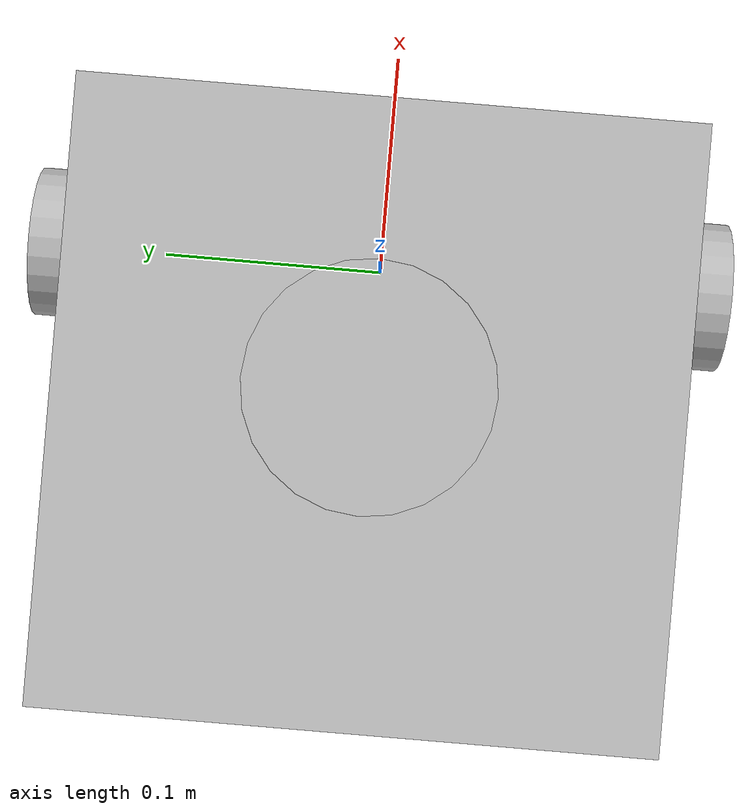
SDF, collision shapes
<?xml version='1.0'?>
<sdf version="1.6">
  <model name="turtlebot3_waffle">
    <pose>0 0 0.01 0 0 0</pose>

    <link name="base_footprint"/>

    <link name="base_link">
      <inertial>
        <pose>-0.064 0 0.048 0 0 0</pose>
        <inertia>
          <ixx>0.0315</ixx>
          <ixy>0.0</ixy>
          <ixz>0.0</ixz>
          <iyy>0.0315</iyy>
          <iyz>0.0</iyz>
          <izz>0.0315</izz>
        </inertia>
        <mass>1.3729096e+00</mass>
      </inertial>

      <collision name="base_collision">
        <pose>-0.064 0 0.048 0 0 0</pose>
        <geometry>
          <box>
            <size>0.265 0.265 0.089</size>
          </box>
        </geometry>
      </collision>

      <visual name="base_visual">
        <pose>-0.064 0 0.0 0 0 0</pose>
        <geometry>
          <mesh>
            <uri>model://turtlebot3_common/meshes/waffle_base.dae</uri>
            <scale>0.001 0.001 0.001</scale>
          </mesh>
        </geometry>
      </visual>
    </link>

    <!-- ================= LEFT WHEEL (LOW FRICTION / SLIP) ================= -->
    <link name="wheel_left_link">
      <pose>0.0 0.144 0.023 -1.57 0 0</pose>
      <inertial>
        <inertia>
          <ixx>1.1175580e-05</ixx>
          <ixy>-4.2369783e-11</ixy>
          <ixz>-5.9381719e-09</ixz>
          <iyy>1.1192413e-05</iyy>
          <iyz>-1.4400107e-11</iyz>
          <izz>2.0712558e-05</izz>
        </inertia>
        <mass>2.8498940e-02</mass>
      </inertial>

      <collision name="wheel_left_collision">
        <geometry>
          <cylinder>
            <radius>0.033</radius>
            <length>0.018</length>
          </cylinder>
        </geometry>
        <surface>
          <!-- Extreme wheel slip: mu1/mu2 = 0.05 (near frictionless). -->
          <friction>
            <ode>
              <mu1>0.05</mu1>
              <mu2>0.05</mu2>
              <fdir1>0 0 0</fdir1>
              <slip1>0.5</slip1>
              <slip2>0.5</slip2>
            </ode>
          </friction>
          <contact>
            <ode>
              <soft_cfm>0</soft_cfm>
              <soft_erp>0.2</soft_erp>
              <kp>1e+05</kp>
              <kd>1</kd>
              <max_vel>0.01</max_vel>
              <min_depth>0.001</min_depth>
            </ode>
          </contact>
        </surface>
      </collision>

      <visual name="wheel_left_visual">
        <pose>0 0 0 1.57 0 0</pose>
        <geometry>
          <mesh>
            <uri>model://turtlebot3_common/meshes/left_tire.dae</uri>
            <scale>0.001 0.001 0.001</scale>
          </mesh>
        </geometry>
      </visual>
    </link>

    <!-- ================= RIGHT WHEEL (LOW FRICTION / SLIP) ================ -->
    <link name="wheel_right_link">
      <pose>0.0 -0.144 0.023 -1.57 0 0</pose>
      <inertial>
        <inertia>
          <ixx>1.1175580e-05</ixx>
          <ixy>-4.2369783e-11</ixy>
          <ixz>-5.9381719e-09</ixz>
          <iyy>1.1192413e-05</iyy>
          <iyz>-1.4400107e-11</iyz>
          <izz>2.0712558e-05</izz>
        </inertia>
        <mass>2.8498940e-02</mass>
      </inertial>

      <collision name="wheel_right_collision">
        <geometry>
          <cylinder>
            <radius>0.033</radius>
            <length>0.018</length>
          </cylinder>
        </geometry>
        <surface>
          <friction>
            <ode>
              <mu1>0.05</mu1>
              <mu2>0.05</mu2>
              <fdir1>0 0 0</fdir1>
              <slip1>0.5</slip1>
              <slip2>0.5</slip2>
            </ode>
          </friction>
          <contact>
            <ode>
              <soft_cfm>0</soft_cfm>
              <soft_erp>0.2</soft_erp>
              <kp>1e+05</kp>
              <kd>1</kd>
              <max_vel>0.01</max_vel>
              <min_depth>0.001</min_depth>
            </ode>
          </contact>
        </surface>
      </collision>

      <visual name="wheel_right_visual">
        <pose>0 0 0 1.57 0 0</pose>
        <geometry>
          <mesh>
            <uri>model://turtlebot3_common/meshes/right_tire.dae</uri>
            <scale>0.001 0.001 0.001</scale>
          </mesh>
        </geometry>
      </visual>
    </link>

    <link name="caster_back_right_link">
      <pose>-0.177 -0.064 -0.004 -1.57 0 0</pose>
      <inertial>
        <inertia>
          <ixx>0.001</ixx>
          <ixy>0.0</ixy>
          <ixz>0.0</ixz>
          <iyy>0.001</iyy>
          <iyz>0.0</iyz>
          <izz>0.001</izz>
        </inertia>
        <mass>0.005</mass>
      </inertial>
      <collision name="caster_back_right_collision">
        <geometry>
          <sphere>
            <radius>0.005000</radius>
          </sphere>
        </geometry>
        <surface>
          <contact>
            <ode>
              <soft_cfm>0</soft_cfm>
              <soft_erp>0.2</soft_erp>
              <kp>1e+05</kp>
              <kd>1</kd>
              <max_vel>0.01</max_vel>
              <min_depth>0.001</min_depth>
            </ode>
          </contact>
          <friction>
            <ode>
              <mu1>0.1</mu1>
              <mu2>0.1</mu2>
            </ode>
          </friction>
        </surface>
      </collision>
    </link>

    <link name="caster_back_left_link">
      <pose>-0.177 0.064 -0.004 -1.57 0 0</pose>
      <inertial>
        <inertia>
          <ixx>0.001</ixx>
          <ixy>0.0</ixy>
          <ixz>0.0</ixz>
          <iyy>0.001</iyy>
          <iyz>0.0</iyz>
          <izz>0.001</izz>
        </inertia>
        <mass>0.005</mass>
      </inertial>
      <collision name="caster_back_left_collision">
        <geometry>
          <sphere>
            <radius>0.005000</radius>
          </sphere>
        </geometry>
        <surface>
          <contact>
            <ode>
              <soft_cfm>0</soft_cfm>
              <soft_erp>0.2</soft_erp>
              <kp>1e+05</kp>
              <kd>1</kd>
              <max_vel>0.01</max_vel>
              <min_depth>0.001</min_depth>
            </ode>
          </contact>
          <friction>
            <ode>
              <mu1>0.1</mu1>
              <mu2>0.1</mu2>
            </ode>
          </friction>
        </surface>
      </collision>
    </link>

    <link name="imu_link">
      <sensor name="tb3_imu" type="imu">
        <always_on>true</always_on>
        <update_rate>200</update_rate>
        <imu>
          <!-- Gaussian noise on the 3-axis gyro (angular velocity). -->
          <angular_velocity>
            <x>
              <noise type="gaussian">
                <mean>0.0</mean>
                <stddev>0.02</stddev>
                <bias_mean>0.0000075</bias_mean>
                <bias_stddev>0.0000008</bias_stddev>
              </noise>
            </x>
            <y>
              <noise type="gaussian">
                <mean>0.0</mean>
                <stddev>0.02</stddev>
                <bias_mean>0.0000075</bias_mean>
                <bias_stddev>0.0000008</bias_stddev>
              </noise>
            </y>
            <z>
              <noise type="gaussian">
                <mean>0.0</mean>
                <stddev>0.02</stddev>
                <bias_mean>0.0000075</bias_mean>
                <bias_stddev>0.0000008</bias_stddev>
              </noise>
            </z>
          </angular_velocity>
          <!-- Gaussian noise on the 3-axis accelerometer. -->
          <linear_acceleration>
            <x>
              <noise type="gaussian">
                <mean>0.0</mean>
                <stddev>0.20</stddev>
                <bias_mean>0.1</bias_mean>
                <bias_stddev>0.001</bias_stddev>
              </noise>
            </x>
            <y>
              <noise type="gaussian">
                <mean>0.0</mean>
                <stddev>0.20</stddev>
                <bias_mean>0.1</bias_mean>
                <bias_stddev>0.001</bias_stddev>
              </noise>
            </y>
            <z>
              <noise type="gaussian">
                <mean>0.0</mean>
                <stddev>0.20</stddev>
                <bias_mean>0.1</bias_mean>
                <bias_stddev>0.001</bias_stddev>
              </noise>
            </z>
          </linear_acceleration>
        </imu>
        <plugin name="turtlebot3_imu" filename="libgazebo_ros_imu_sensor.so">
          <ros>
            <!-- Publishes sensor_msgs/Imu on /imu -->
            <remapping>~/out:=imu</remapping>
          </ros>
          <initial_orientation_as_reference>false</initial_orientation_as_reference>
          <frame_name>imu_link</frame_name>
        </plugin>
      </sensor>
    </link>

    <link name="base_scan">
      <inertial>
        <pose>-0.052 0 0.111 0 0 0</pose>
        <inertia>
          <ixx>0.001</ixx>
          <ixy>0.0</ixy>
          <ixz>0.0</ixz>
          <iyy>0.001</iyy>
          <iyz>0.0</iyz>
          <izz>0.001</izz>
        </inertia>
        <mass>0.114</mass>
      </inertial>

      <collision name="lidar_sensor_collision">
        <pose>-0.052 0 0.111 0 0 0</pose>
        <geometry>
          <cylinder>
            <radius>0.0508</radius>
            <length>0.055</length>
          </cylinder>
        </geometry>
      </collision>

      <visual name="lidar_sensor_visual">
        <pose>-0.064 0 0.121 0 0 0</pose>
        <geometry>
          <mesh>
            <uri>model://turtlebot3_common/meshes/lds.dae</uri>
            <scale>0.001 0.001 0.001</scale>
          </mesh>
        </geometry>
      </visual>

      <sensor name="hls_lfcd_lds" type="ray">
        <always_on>true</always_on>
        <visualize>false</visualize>
        <pose>-0.064 0 0.121 0 0 0</pose>
        <update_rate>5</update_rate>
        <ray>
          <scan>
            <horizontal>
              <samples>360</samples>
              <resolution>1.000000</resolution>
              <min_angle>0.000000</min_angle>
              <max_angle>6.280000</max_angle>
            </horizontal>
          </scan>
          <range>
            <min>0.120000</min>
            <max>3.5</max>
            <resolution>0.015000</resolution>
          </range>
          <noise>
            <type>gaussian</type>
            <mean>0.0</mean>
            <stddev>0.01</stddev>
          </noise>
        </ray>
        <plugin name="turtlebot3_laserscan" filename="libgazebo_ros_ray_sensor.so">
          <ros>
            <remapping>~/out:=scan</remapping>
          </ros>
          <output_type>sensor_msgs/LaserScan</output_type>
          <frame_name>base_scan</frame_name>
        </plugin>
      </sensor>
    </link>

    <!-- ============================ JOINTS ============================ -->
    <joint name="base_joint" type="fixed">
      <parent>base_footprint</parent>
      <child>base_link</child>
      <pose>0.0 0.0 0.010 0 0 0</pose>
    </joint>

    <joint name="wheel_left_joint" type="revolute">
      <parent>base_link</parent>
      <child>wheel_left_link</child>
      <pose>0.0 0.144 0.023 -1.57 0 0</pose>
      <axis>
        <xyz>0 0 1</xyz>
      </axis>
    </joint>

    <joint name="wheel_right_joint" type="revolute">
      <parent>base_link</parent>
      <child>wheel_right_link</child>
      <pose>0.0 -0.144 0.023 -1.57 0 0</pose>
      <axis>
        <xyz>0 0 1</xyz>
      </axis>
    </joint>

    <joint name="caster_back_right_joint" type="ball">
      <parent>base_link</parent>
      <child>caster_back_right_link</child>
    </joint>

    <joint name="caster_back_left_joint" type="ball">
      <parent>base_link</parent>
      <child>caster_back_left_link</child>
    </joint>

    <joint name="imu_joint" type="fixed">
      <parent>base_link</parent>
      <child>imu_link</child>
      <pose>-0.032 0 0.068 0 0 0</pose>
    </joint>

    <joint name="lidar_joint" type="fixed">
      <parent>base_link</parent>
      <child>base_scan</child>
      <pose>-0.064 0 0.121 0 0 0</pose>
    </joint>

    <!-- ==================== DIFFERENTIAL DRIVE ======================= -->
    <plugin name="turtlebot3_diff_drive" filename="libgazebo_ros_diff_drive.so">
      <ros>
        <!--
          Wheel-encoder odometry is published as the *raw / unfiltered* input
          for the EKF. It is deliberately NOT called /odom so it never fights
          the EKF output.
        -->
        <remapping>odom:=odom_unfiltered</remapping>
      </ros>

      <update_rate>30</update_rate>

      <!-- wheels -->
      <left_joint>wheel_left_joint</left_joint>
      <right_joint>wheel_right_joint</right_joint>
      <wheel_separation>0.287</wheel_separation>
      <wheel_diameter>0.066</wheel_diameter>

      <!-- limits -->
      <max_wheel_torque>20</max_wheel_torque>
      <max_wheel_acceleration>1.0</max_wheel_acceleration>

      <!-- output -->
      <command_topic>cmd_vel</command_topic>
      <publish_odom>true</publish_odom>

      <!-- Do NOT publish the odom->base_footprint TF: the EKF owns it. -->
      <publish_odom_tf>false</publish_odom_tf>
      <publish_wheel_tf>false</publish_wheel_tf>

      <odometry_topic>odom_unfiltered</odometry_topic>
      <odometry_frame>odom</odometry_frame>
      <robot_base_frame>base_footprint</robot_base_frame>

      <odometry_source>1</odometry_source>
    </plugin>

    <!-- ================= JOINT STATE PUBLISHER ======================= -->
    <plugin name="turtlebot3_joint_state" filename="libgazebo_ros_joint_state_publisher.so">
      <ros>
        <remapping>~/out:=joint_states</remapping>
      </ros>
      <update_rate>30</update_rate>
      <joint_name>wheel_left_joint</joint_name>
      <joint_name>wheel_right_joint</joint_name>
    </plugin>
  </model>
</sdf>
